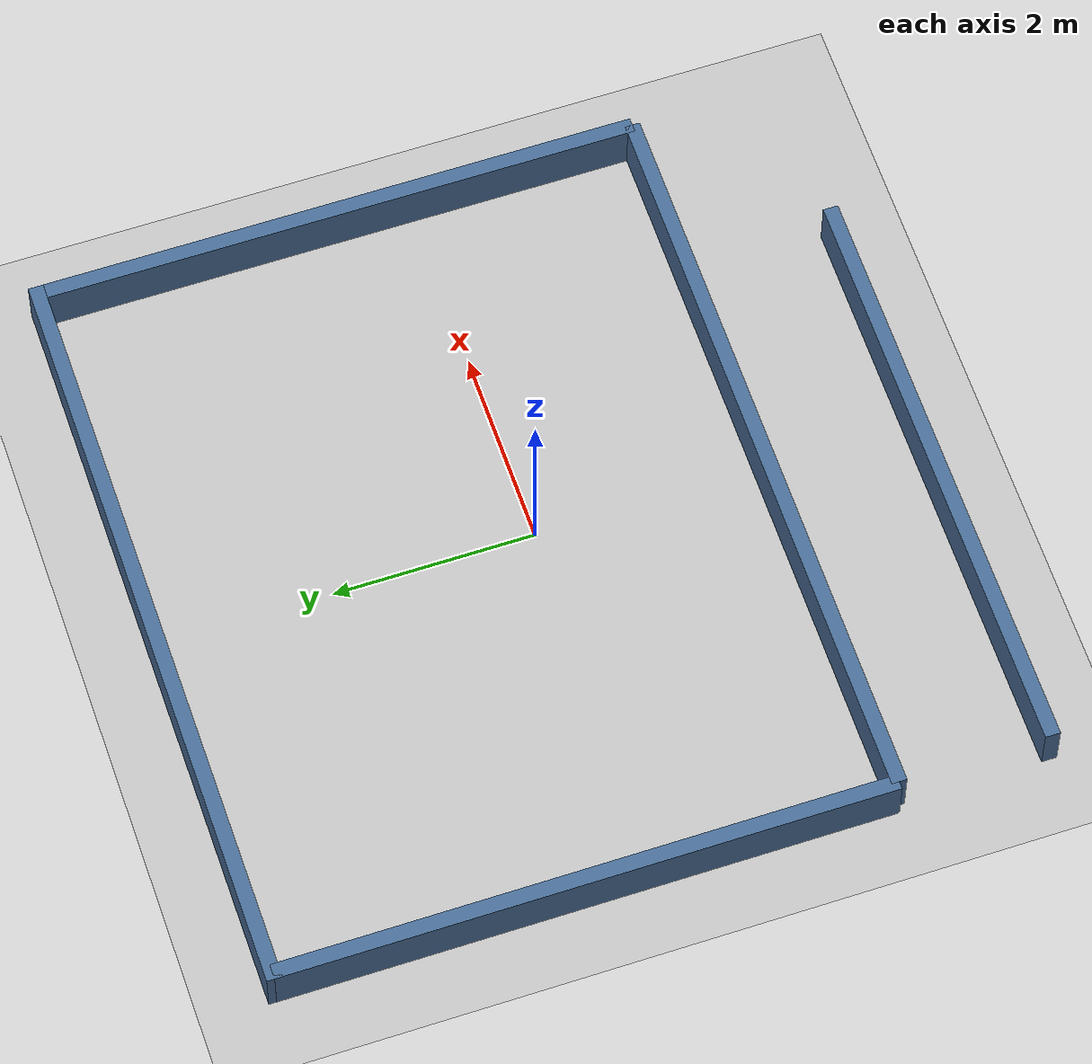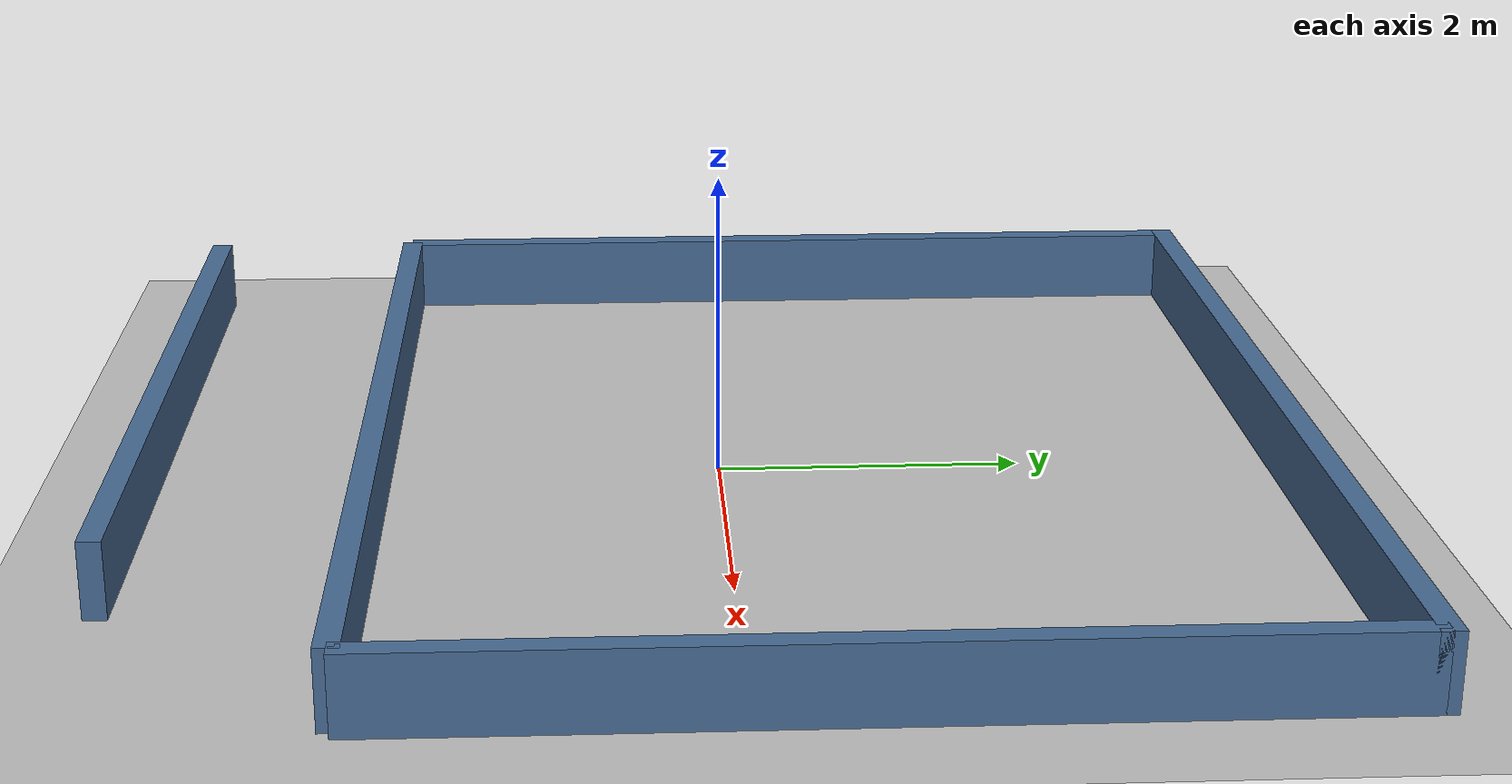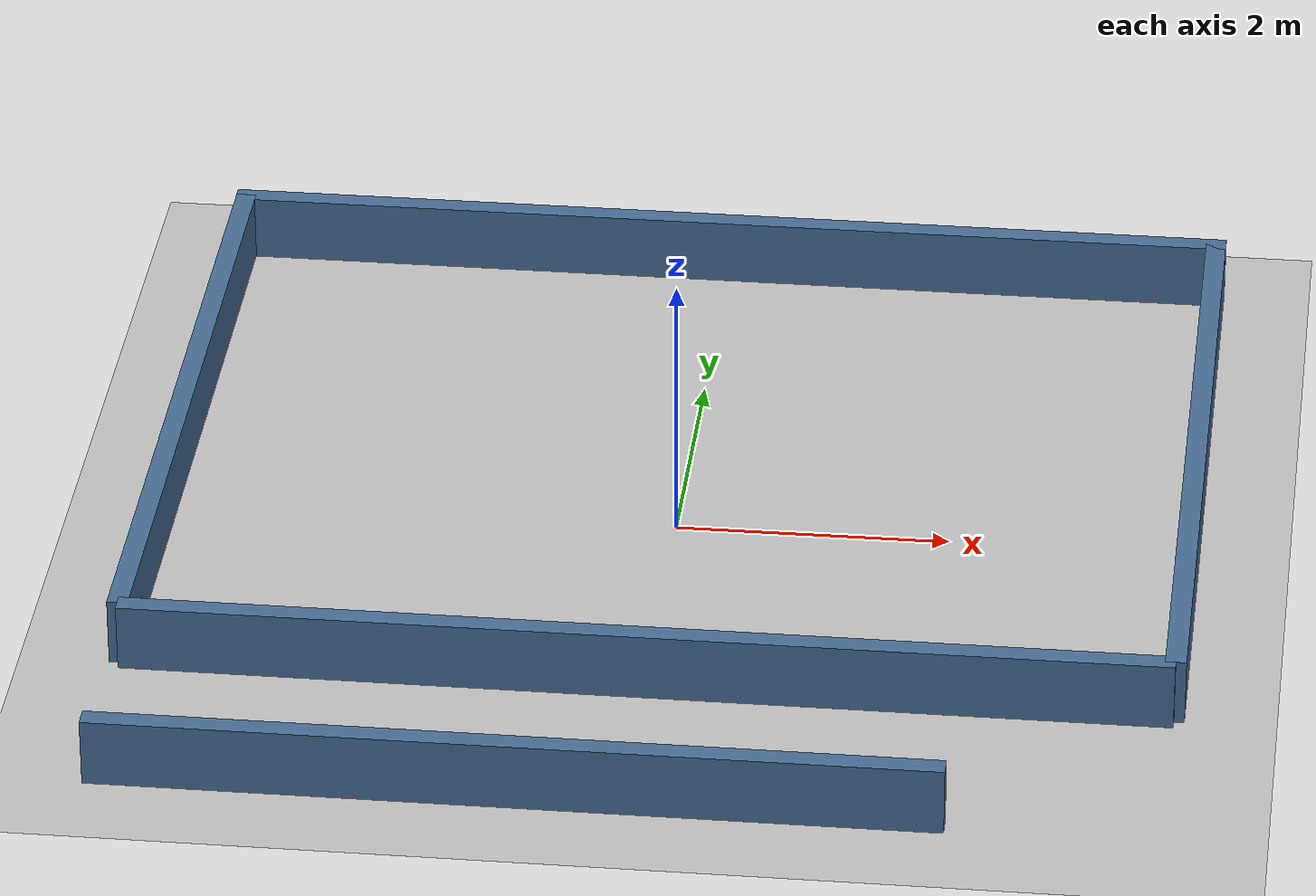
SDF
<sdf version="1.6"><world name="micromouse">
<physics name="ode" type="ode"><max_step_size>0.001</max_step_size><real_time_update_rate>1000</real_time_update_rate></physics>
<gui><camera name="overview"><pose>0 0 10 0 1.570796 -1.570796</pose><view_controller>orbit</view_controller></camera></gui>
<gravity>0 0 -9.81</gravity>
<light name="sun" type="directional"><pose>0 0 10 0 0 0</pose><diffuse>0.8 0.8 0.8 1</diffuse><specular>0.2 0.2 0.2 1</specular><direction>-0.5 0.1 -0.9</direction></light>
<model name="ground"><static>true</static><link name="floor"><collision name="collision"><geometry><plane><normal>0 0 1</normal><size>30 30</size></plane></geometry></collision><visual name="visual"><geometry><plane><normal>0 0 1</normal><size>30 30</size></plane></geometry><material><ambient>0.75 0.75 0.75 1</ambient><diffuse>0.75 0.75 0.75 1</diffuse></material></visual></link></model>
<model name="course_north"><static>true</static><pose>0 3.75 0.25 0 0 0</pose><link name="wall"><collision name="collision"><geometry><box><size>7.65 0.15 0.5</size></box></geometry></collision><visual name="visual"><geometry><box><size>7.65 0.15 0.5</size></box></geometry><material><ambient>0.28 0.42 0.58 1</ambient><diffuse>0.28 0.42 0.58 1</diffuse></material></visual></link></model>
<model name="course_west"><static>true</static><pose>-3.75 0.75 0.25 0 0 0</pose><link name="wall"><collision name="collision"><geometry><box><size>0.15 6 0.5</size></box></geometry></collision><visual name="visual"><geometry><box><size>0.15 6 0.5</size></box></geometry><material><ambient>0.28 0.42 0.58 1</ambient><diffuse>0.28 0.42 0.58 1</diffuse></material></visual></link></model>
<model name="course_east"><static>true</static><pose>3.75 0.75 0.25 0 0 0</pose><link name="wall"><collision name="collision"><geometry><box><size>0.15 6 0.5</size></box></geometry></collision><visual name="visual"><geometry><box><size>0.15 6 0.5</size></box></geometry><material><ambient>0.28 0.42 0.58 1</ambient><diffuse>0.28 0.42 0.58 1</diffuse></material></visual></link></model>
<model name="course_south"><static>true</static><pose>-0.75 -3.75 0.25 0 0 0</pose><link name="wall"><collision name="collision"><geometry><box><size>6 0.15 0.5</size></box></geometry></collision><visual name="visual"><geometry><box><size>6 0.15 0.5</size></box></geometry><material><ambient>0.28 0.42 0.58 1</ambient><diffuse>0.28 0.42 0.58 1</diffuse></material></visual></link></model>
<model name="course_inner"><static>true</static><pose>0 -2.25 0.25 0 0 0</pose><link name="wall"><collision name="collision"><geometry><box><size>7.5 0.15 0.5</size></box></geometry></collision><visual name="visual"><geometry><box><size>7.5 0.15 0.5</size></box></geometry><material><ambient>0.28 0.42 0.58 1</ambient><diffuse>0.28 0.42 0.58 1</diffuse></material></visual></link></model>
</world></sdf>
